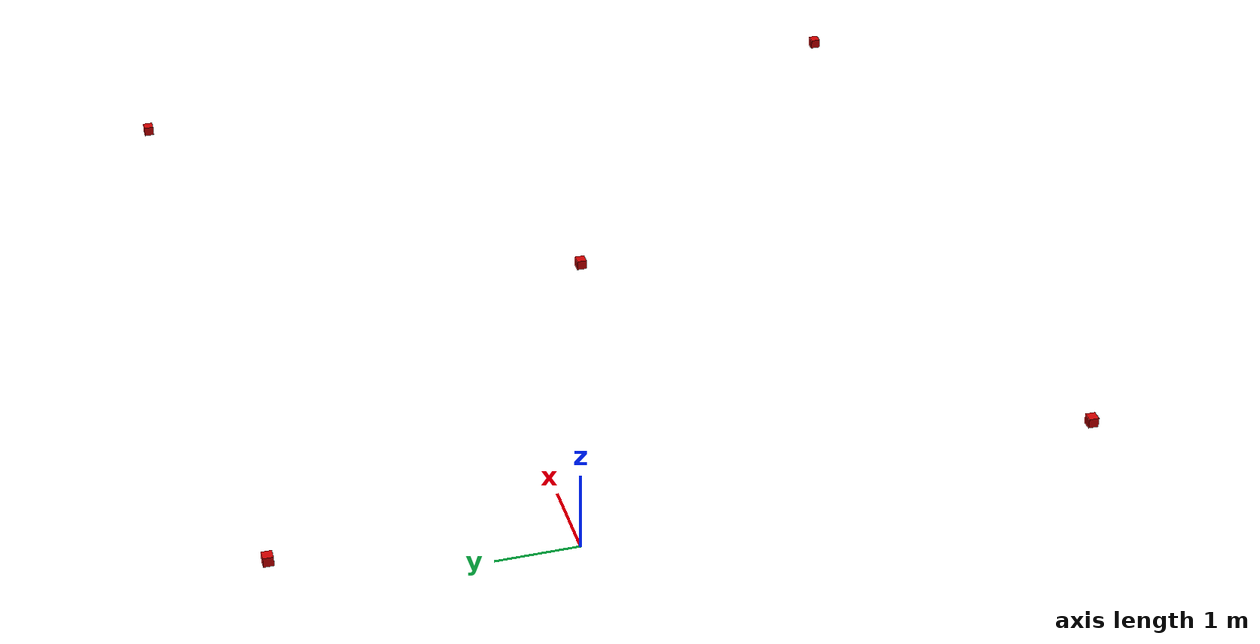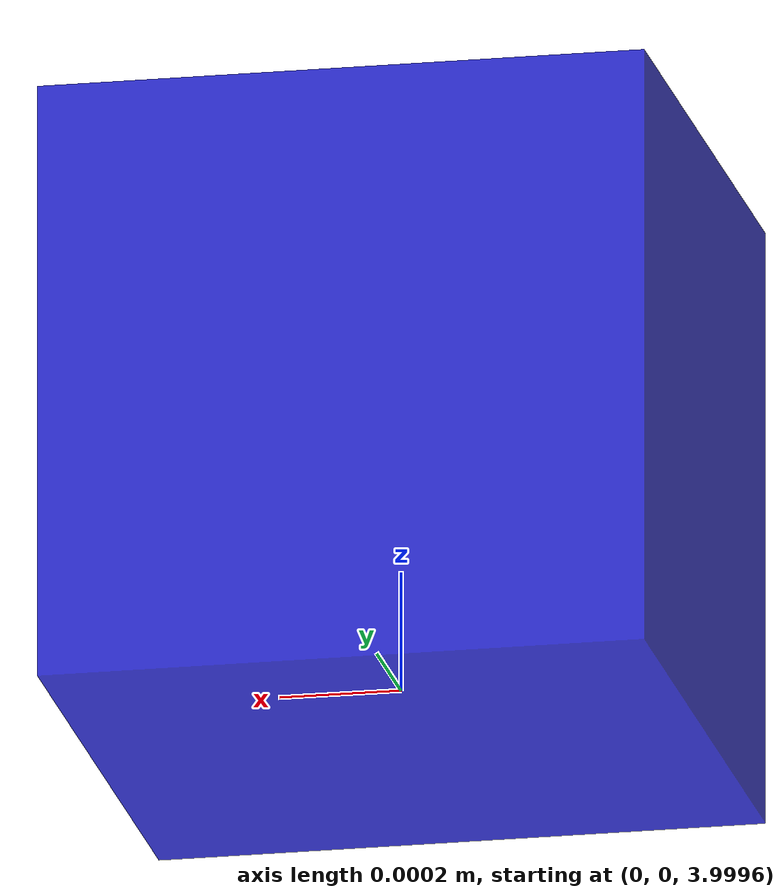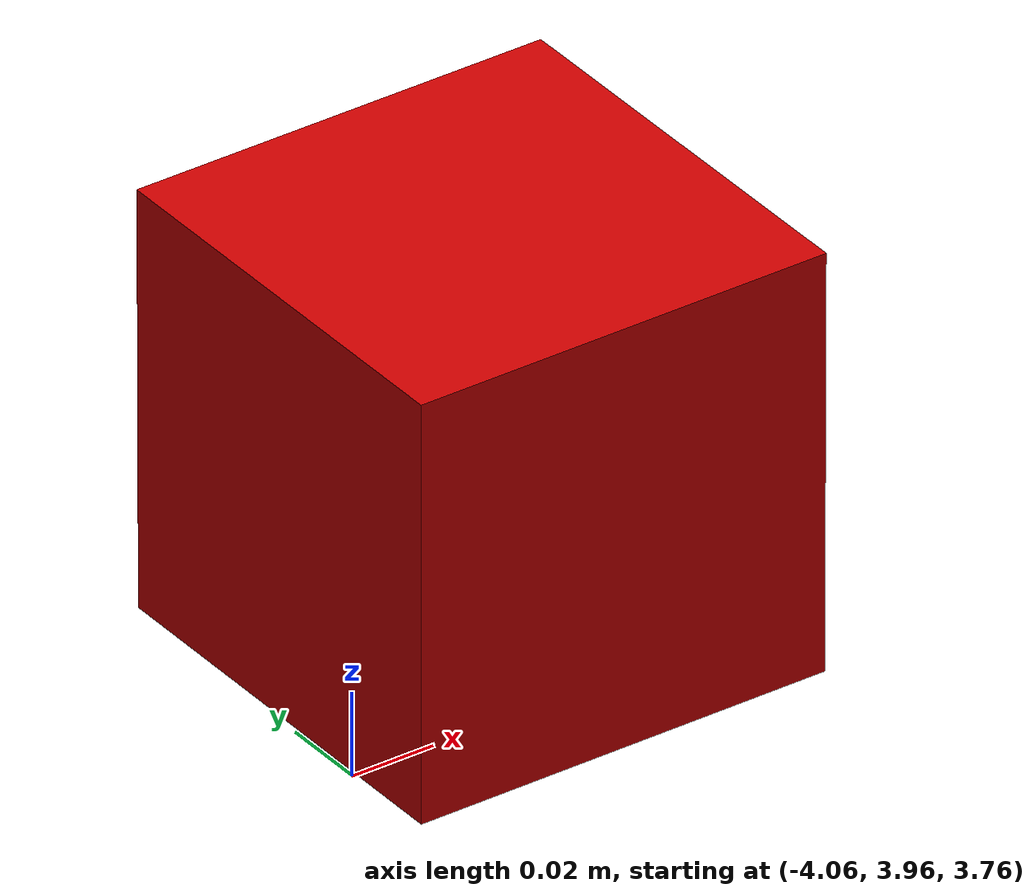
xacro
<?xml version="1.0" ?>
<robot name="restaurant" xmlns:xacro="http://www.ros.org/wiki/xacro" >
<xacro:include filename = "$(find cam_pack)/urdf/restaurant.plugins.xacro"/>

<xacro:property name="height_off_ground" value="4" />
<xacro:property name="height_off_ground_offset" value="0.2" />
<xacro:property name="cam_separation" value="5" />
<xacro:property name="cam_box_size" value="0.1" />
<xacro:property name="cam_mass" value="0.25" />
<xacro:property name="cam_z_joint_height" value="${height_off_ground - height_off_ground_offset}" />

<xacro:property name="cam_inertia_xx" value="0.00020416666666666668" />
<xacro:property name="cam_inertia_yy" value="0.00020416666666666668" />
<xacro:property name="cam_inertia_zz" value="0.00020416666666666668" />

<xacro:property name="ceiling_mass" value="50" />    change this!!!
<xacro:property name="ceiling_inertia_xx" value="150.16666666666669" />
<xacro:property name="ceiling_inertia_yy" value="337.66666666666674" />
<xacro:property name="ceiling_inertia_zz" value="487.50000000000006" />
<xacro:property name="ceiling_width" value="0.001" />
<xacro:property name="ceiling_length" value="0.001" />
<xacro:property name="ceiling_thickness" value="0.001" />

    <!-- Specify material colors here -->
    <material name="blue">
        <color rgba="0 0 0.8 0.8"/>
    </material>
    <material name="red">
        <color rgba="0.8 0 0 1"/>
    </material>
    <material name="grey">
        <color rgba="0.75 0.75 0.75 1"/>
    </material>

    <!-- Gazebo plugin initialization -->
    <gazebo>
        <plugin name="gazebo_ros_control" filename="libgazebo_ros_control.so">
            <robotNamespace>/restaurant</robotNamespace> This robot name is the same as robot name at the top
        </plugin>
    </gazebo>

     <!-- ////////////////////////// === BASE LINK ==== //////////////////////////////////// -->

   <!-- Main base link -->
    <link name="base_link">
        <visual>
        <origin xyz="0 0 ${height_off_ground}" rpy="0 0 0"/>  created at 31 meters above just to have space to work with
        <geometry>
            <box size="${ceiling_width} ${ceiling_length} ${ceiling_thickness}"/>
        </geometry>
        <material name = "blue"/>
        </visual>

        <collision>
            <origin xyz="0 0 ${height_off_ground}" rpy="0 0 0"/>
            <geometry>
                <box size="${ceiling_width} ${ceiling_length} ${ceiling_thickness}"/>
            </geometry>
        </collision>
        <inertial>
        <mass value="${ceiling_mass}" /> This camera was estimated from the mass(weight) of a logitech camera = 0.25kg
        <origin xyz="0 0 ${height_off_ground}" rpy="0 0 0"/> Inertia was calculated from the inertial calculator program
        <inertia ixx="${ceiling_inertia_xx}" ixy="0" ixz="0" iyy="${ceiling_inertia_yy}" iyz="0" izz="${ceiling_inertia_zz}" />
        </inertial>
    </link>

    This is for color and physical properties in Gazebo, color won't work with the material tag in gazebo
    only for URDF coloring
    <gazebo reference="base_link">
        <turnGravityOff>true</turnGravityOff>
        <mu1>10.0</mu1>
        <mu2>10.0</mu2>
        <material>Gazebo/DarkGrey</material>
        <static>true</static>
    </gazebo>

    <!-- ////////////////////////// === CAMERA LINKS ==== //////////////////////////////////// -->
 Change camera size to make more visible 0.5 0.5 0.5...original = 0.07 0.07 0.07
    <!-- Camera Link 1-->
    <link name="camera_link_1">
        <collision>
        <origin xyz="0 0 0" rpy="0 0 0"/>
        <geometry>
            <box size="${cam_box_size} ${cam_box_size} ${cam_box_size}"/>
        </geometry>
        </collision>

        <visual>
        <origin xyz="0 0 0" rpy="0 0 0"/>
        <geometry>
            <box size="${cam_box_size} ${cam_box_size} ${cam_box_size}"/>
        </geometry>
        <material name="red"/>
        </visual>

        <inertial>
        <mass value="${cam_mass}" /> This camera was estimated from the mass(weight) of a logitech camera = 0.25kg
        <origin xyz="0 0 0" rpy="0 0 0"/> Inertia was calculated from the inertial calculator program
        <inertia ixx="${cam_inertia_xx}" ixy="0" ixz="0" iyy="${cam_inertia_yy}" iyz="0" izz="${cam_inertia_zz}" />
        </inertial>
    </link>

    <gazebo reference="camera_link_1">
        <turnGravityOff>true</turnGravityOff>
        <mu1>10.0</mu1>
        <mu2>10.0</mu2>
        <material>Gazebo/Red</material>
        <static>true</static>
    </gazebo>

    <!-- Camera Link 2-->
    <link name="camera_link_2">
        <collision>
        <origin xyz="0 0 0" rpy="0 0 0"/>
        <geometry>
            <box size="${cam_box_size} ${cam_box_size} ${cam_box_size}"/>
        </geometry>
        </collision>

        <visual>
        <origin xyz="0 0 0" rpy="0 0 0"/>
        <geometry>
            <box size="${cam_box_size} ${cam_box_size} ${cam_box_size}"/>
        </geometry>
        <material name="red"/>
        </visual>

        <inertial>
        <mass value="${cam_mass}" /> This camera was estimated from the mass(weight) of a logitech camera = 0.25kg
        <origin xyz="0 0 0" rpy="0 0 0"/> Inertia was calculated from the inertial calculator program
        <inertia ixx="${cam_inertia_xx}" ixy="0" ixz="0" iyy="${cam_inertia_yy}" iyz="0" izz="${cam_inertia_zz}" />
        </inertial>
    </link>

    <gazebo reference="camera_link_2">
        <turnGravityOff>true</turnGravityOff>
        <mu1>10.0</mu1>
        <mu2>10.0</mu2>
        <material>Gazebo/Red</material>
        <static>true</static>
    </gazebo>

    <!-- Camera Link 3-->
    <link name="camera_link_3">
        <collision>
        <origin xyz="0 0 0" rpy="0 0 0"/>
        <geometry>
            <box size="${cam_box_size} ${cam_box_size} ${cam_box_size}"/>
        </geometry>
        </collision>

        <visual>
        <origin xyz="0 0 0" rpy="0 0 0"/>
        <geometry>
            <box size="${cam_box_size} ${cam_box_size} ${cam_box_size}"/>
        </geometry>
        <material name="red"/>
        </visual>

        <inertial>
        <mass value="${cam_mass}" /> This camera was estimated from the mass(weight) of a logitech camera = 0.25kg
        <origin xyz="0 0 0" rpy="0 0 0"/> Inertia was calculated from the inertial calculator program
        <inertia ixx="${cam_inertia_xx}" ixy="0" ixz="0" iyy="${cam_inertia_yy}" iyz="0" izz="${cam_inertia_zz}" />
        </inertial>
    </link>

    <gazebo reference="camera_link_3">
        <turnGravityOff>true</turnGravityOff>
        <mu1>10.0</mu1>
        <mu2>10.0</mu2>
        <material>Gazebo/Red</material>
        <static>true</static>
    </gazebo>

    <!-- Camera Link 4-->
    <link name="camera_link_4">
        <collision>
        <origin xyz="0 0 0" rpy="0 0 0"/>
        <geometry>
            <box size="${cam_box_size} ${cam_box_size} ${cam_box_size}"/>
        </geometry>
        </collision>

        <visual>
        <origin xyz="0 0 0" rpy="0 0 0"/>
        <geometry>
            <box size="${cam_box_size} ${cam_box_size} ${cam_box_size}"/>
        </geometry>
        <material name="red"/>
        </visual>

        <inertial>
        <mass value="${cam_mass}" /> This camera was estimated from the mass(weight) of a logitech camera = 0.25kg
        <origin xyz="0 0 0" rpy="0 0 0"/> Inertia was calculated from the inertial calculator program
        <inertia ixx="${cam_inertia_xx}" ixy="0" ixz="0" iyy="${cam_inertia_yy}" iyz="0" izz="${cam_inertia_zz}" />
        </inertial>
    </link>

    <gazebo reference="camera_link_4">
        <turnGravityOff>true</turnGravityOff>
        <mu1>10.0</mu1>
        <mu2>10.0</mu2>
        <material>Gazebo/Red</material>
        <static>true</static>
    </gazebo>

        <!-- Camera Link 5-->
    <link name="camera_link_5">
        <collision>
        <origin xyz="0 0 0" rpy="0 0 0"/>
        <geometry>
            <box size="${cam_box_size} ${cam_box_size} ${cam_box_size}"/>
        </geometry>
        </collision>

        <visual>
        <origin xyz="0 0 0" rpy="0 0 0"/>
        <geometry>
            <box size="${cam_box_size} ${cam_box_size} ${cam_box_size}"/>
        </geometry>
        <material name="red"/>
        </visual>

        <inertial>
        <mass value="${cam_mass}" /> This camera was estimated from the mass(weight) of a logitech camera = 0.25kg
        <origin xyz="0 0 0" rpy="0 0 0"/> Inertia was calculated from the inertial calculator program
        <inertia ixx="${cam_inertia_xx}" ixy="0" ixz="0" iyy="${cam_inertia_yy}" iyz="0" izz="${cam_inertia_zz}" />
        </inertial>
    </link>

    <gazebo reference="camera_link_5">
        <turnGravityOff>true</turnGravityOff>
        <mu1>10.0</mu1>
        <mu2>10.0</mu2>
        <material>Gazebo/Red</material>
        <static>true</static>
    </gazebo>

    <!-- ////////////////////////// === Joints ==== //////////////////////////////////// -->
  I can spawn all the camera links at origin 0 0 0  but I use the joints to move them to the positions I want them in.

    <!-- joint = base_link to camera_link -->
    <joint name="camera_joint_1" type="fixed">
        <origin xyz="${4}  ${4} ${cam_z_joint_height}" rpy="0 0 0"/>
        <parent link="base_link"/>
        <child link="camera_link_1"/>
    </joint>

    <!-- joint = base_link to camera_link -->
    <joint name="camera_joint_2" type="fixed">
        <origin xyz="${-4}  ${4} ${cam_z_joint_height}" rpy="0 0 0"/>
        <parent link="base_link"/>
        <child link="camera_link_2"/>
    </joint>

    <!-- joint = base_link to camera_link -->
    <joint name="camera_joint_3" type="fixed">
        <origin xyz="${-4}  ${-4} ${cam_z_joint_height}" rpy="0 0 0"/>
        <parent link="base_link"/>
        <child link="camera_link_3"/>
    </joint>

     <!-- joint = base_link to camera_link -->
    <joint name="camera_joint_4" type="fixed">
        <origin xyz="${4}  ${-4}  ${cam_z_joint_height}" rpy="0 0 0"/>
        <parent link="base_link"/>
        <child link="camera_link_4"/>
    </joint>

      <!-- joint = base_link to camera_link -->
    <joint name="camera_joint_5" type="fixed">
        <origin xyz="${0}  ${0}  ${cam_z_joint_height}" rpy="0 0 0"/>
        <parent link="base_link"/>
        <child link="camera_link_5"/>
    </joint>

</robot>
